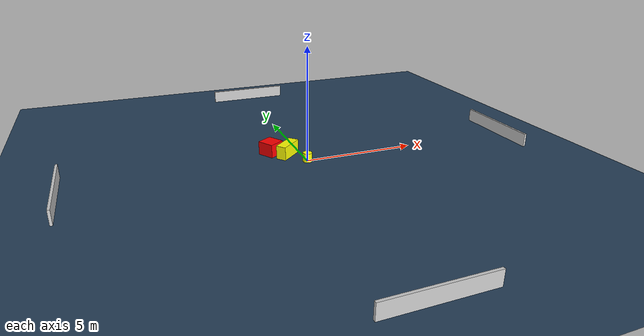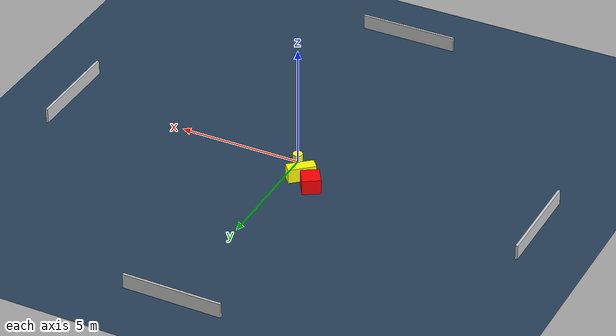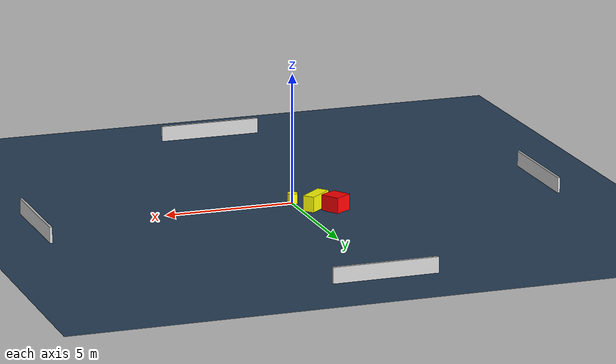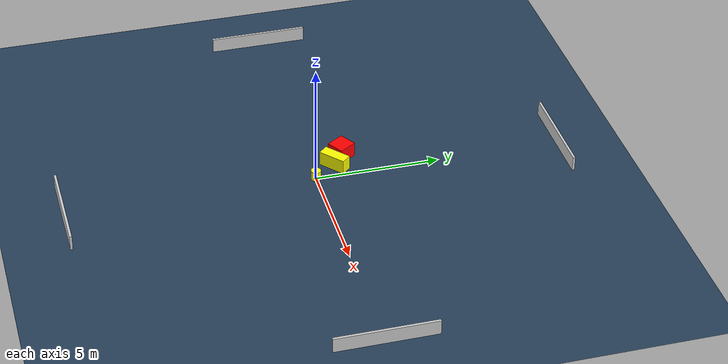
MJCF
<?xml version="1.0" ?>
<mujoco model="generated_environment">
  <option timestep="0.01" integrator="RK4" cone="elliptic"/>
  <default>
    <geom density="1"/>
  </default>
  <asset>
    <texture builtin="gradient" height="3072" name="skybox" rgb1="0.3 0.5 0.7" rgb2="0 0 0" type="skybox" width="512"/>
    <texture builtin="checker" height="300" name="groundplane" rgb1="0.2 0.3 0.4" rgb2="0.1 0.2 0.3" type="2d" width="300"/>
    <material name="groundplane" reflectance="0.2" texrepeat="5 5" texture="groundplane"/>
  </asset>
  <worldbody>
    <light dir="0 0 -1" directional="true" pos="0 0 1.5"/>
    <geom condim="3" friction="0.5 0.005 0.001" material="groundplane" name="floor" pos="0 0 0" size="0 0 0.05" type="plane"/>
    <body name="walls">
      <geom name="wall_1" condim="4" pos="-10.0 0.0 0.3" rgba="0.800000011920929 0.800000011920929 0.800000011920929 1.0" size="0.05 2.0 0.3" type="box"/>
      <geom name="wall_2" condim="4" pos="10.0 0.0 0.3" rgba="0.800000011920929 0.800000011920929 0.800000011920929 1.0" size="0.05 2.0 0.3" type="box"/>
      <geom name="wall_3" condim="4" pos="0.0 -10.0 0.3" rgba="0.800000011920929 0.800000011920929 0.800000011920929 1.0" size="2.0 0.05 0.3" type="box"/>
      <geom name="wall_4" condim="4" pos="0.0 10.0 0.3" rgba="0.800000011920929 0.800000011920929 0.800000011920929 1.0" size="2.0 0.05 0.3" type="box"/>
    </body>
    <body name="robot">
      <joint name="joint_x" type="slide" pos="0 0 0" axis="1 0 0"/>
      <joint name="joint_y" type="slide" pos="0 0 0" axis="0 1 0"/>
      <geom name="robot" type="cylinder" pos="0.0 0.0 0.2" size="0.2 0.2 0.0" mass="5.0" friction="1.0 0.005 0.0001" condim="4" rgba="1.0 1.0 0.0 1.0"/>
    </body>
    <body name="obstacle_1_movable">
      <geom name="obstacle_1_movable" condim="4" pos="-0.6030251765338528 0.9167563438758811 0.3" euler="0 0 311.02500130468985" friction="0.0 0.005 0.001" rgba="1.0 1.0 0.0 1.0" size="0.2275330860381043 0.5630479134189381 0.3" type="box" mass="0.1"/>
      <joint type="free"/>
    </body>
    <body name="obstacle_2_static">
      <geom name="obstacle_2_static" condim="4" pos="-1.2357712171972826 1.3632485547259414 0.3" euler="0 0 121.82699222323124" friction="0.0 0.005 0.001" rgba="1.0 0.0 0.0 1.0" size="0.3828891157366388 0.36712968780578537 0.3" type="box"/>
    </body>
  </worldbody>
  <actuator>
    <motor name="actuator_x" joint="joint_x" gear="1" ctrlrange="-1 1"/>
    <motor name="actuator_y" joint="joint_y" gear="1" ctrlrange="-1 1"/>
  </actuator>
</mujoco>
